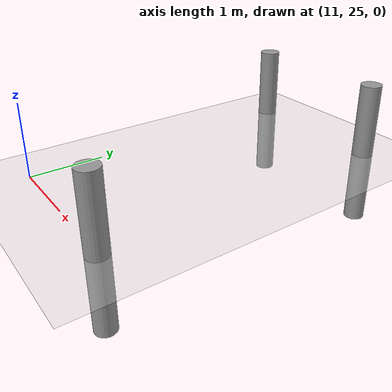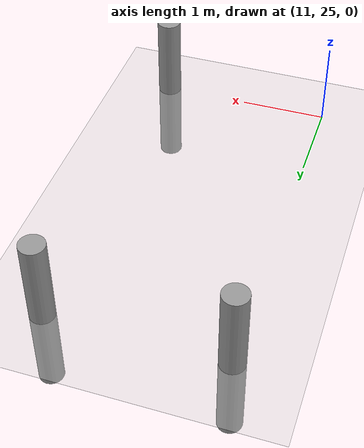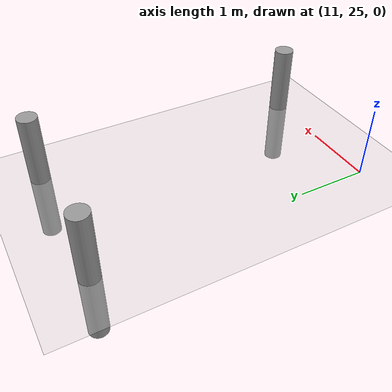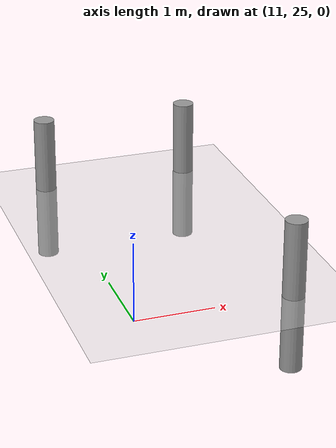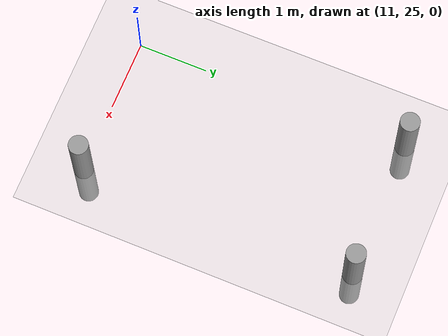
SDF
<sdf version="1.6">
 <world name="default">
  <model name="ground_plane">
   <static>1</static>
   <link name="link">
    <collision name="collision">
     <geometry><plane><normal>0 0 1</normal><size>100 100</size></plane></geometry>
     <surface><friction><ode><mu>100</mu><mu2>50</mu2></ode></friction></surface>
    </collision>
    <visual name="visual">
     <cast_shadows>0</cast_shadows>
     <geometry><plane><normal>0 0 1</normal><size>100 100</size></plane></geometry>
     <material>
      <script><uri>file://media/materials/scripts/gazebo.material</uri><name>Gazebo/Grey</name></script>
     </material>
    </visual>
   </link>
  </model>
  <model name="my_cylinder014_clone_46_0">
   <pose>13 29 0 0 -0 0</pose>
   <link name="my_cylinder014::link">
    <inertial>
     <mass>1</mass>
     <inertia><ixx>0.145833</ixx><ixy>0</ixy><ixz>0</ixz><iyy>0.145833</iyy><iyz>0</iyz><izz>0.125</izz></inertia>
    </inertial>
    <visual name="visual">
     <geometry><cylinder><radius>0.14</radius><length>2</length></cylinder></geometry>
     <material>
      <script><name>Gazebo/Grey</name><uri>file://media/materials/scripts/gazebo.material</uri></script>
      <ambient>0.3 0.3 0.3 1</ambient>
      <diffuse>0.7 0.7 0.7 1</diffuse>
      <specular>1 0.01 0.01 1</specular>
      <emissive>0 0 0 1</emissive>
      <shader type="vertex"><normal_map>__default__</normal_map></shader>
     </material>
    </visual>
    <collision name="collision">
     <geometry><cylinder><radius>0.14</radius><length>2</length></cylinder></geometry>
     <surface>
      <friction>
       <ode><mu>1</mu><mu2>1</mu2><fdir1>0 0 0</fdir1><slip1>0</slip1><slip2>0</slip2></ode>
       <torsional>
        <coefficient>1</coefficient>
        <patch_radius>0</patch_radius>
        <surface_radius>0</surface_radius>
        <use_patch_radius>1</use_patch_radius>
        <ode><slip>0</slip></ode>
       </torsional>
      </friction>
      <bounce><restitution_coefficient>0</restitution_coefficient><threshold>1e+06</threshold></bounce>
      <contact>
       <collide_without_contact>0</collide_without_contact>
       <collide_without_contact_bitmask>1</collide_without_contact_bitmask>
       <collide_bitmask>1</collide_bitmask>
       <ode>
        <soft_cfm>0</soft_cfm>
        <soft_erp>0.2</soft_erp>
        <kp>1e+13</kp>
        <kd>1</kd>
        <max_vel>0.01</max_vel>
        <min_depth>0</min_depth>
       </ode>
       <bullet>
        <split_impulse>1</split_impulse>
        <split_impulse_penetration_threshold>-0.01</split_impulse_penetration_threshold>
        <soft_cfm>0</soft_cfm>
        <soft_erp>0.2</soft_erp>
        <kp>1e+13</kp>
        <kd>1</kd>
       </bullet>
      </contact>
     </surface>
    </collision>
   </link>
   <static>1</static>
  </model>
  <model name="my_cylinder014_clone_30_1">
   <pose>13 25 0 0 -0 0</pose>
   <link name="my_cylinder014::link">
    <inertial>
     <mass>1</mass>
     <inertia><ixx>0.145833</ixx><ixy>0</ixy><ixz>0</ixz><iyy>0.145833</iyy><iyz>0</iyz><izz>0.125</izz></inertia>
    </inertial>
    <visual name="visual">
     <geometry><cylinder><radius>0.14</radius><length>2</length></cylinder></geometry>
     <material>
      <script><name>Gazebo/Grey</name><uri>file://media/materials/scripts/gazebo.material</uri></script>
      <ambient>0.3 0.3 0.3 1</ambient>
      <diffuse>0.7 0.7 0.7 1</diffuse>
      <specular>1 0.01 0.01 1</specular>
      <emissive>0 0 0 1</emissive>
      <shader type="vertex"><normal_map>__default__</normal_map></shader>
     </material>
    </visual>
    <collision name="collision">
     <geometry><cylinder><radius>0.14</radius><length>2</length></cylinder></geometry>
     <surface>
      <friction>
       <ode><mu>1</mu><mu2>1</mu2><fdir1>0 0 0</fdir1><slip1>0</slip1><slip2>0</slip2></ode>
       <torsional>
        <coefficient>1</coefficient>
        <patch_radius>0</patch_radius>
        <surface_radius>0</surface_radius>
        <use_patch_radius>1</use_patch_radius>
        <ode><slip>0</slip></ode>
       </torsional>
      </friction>
      <bounce><restitution_coefficient>0</restitution_coefficient><threshold>1e+06</threshold></bounce>
      <contact>
       <collide_without_contact>0</collide_without_contact>
       <collide_without_contact_bitmask>1</collide_without_contact_bitmask>
       <collide_bitmask>1</collide_bitmask>
       <ode>
        <soft_cfm>0</soft_cfm>
        <soft_erp>0.2</soft_erp>
        <kp>1e+13</kp>
        <kd>1</kd>
        <max_vel>0.01</max_vel>
        <min_depth>0</min_depth>
       </ode>
       <bullet>
        <split_impulse>1</split_impulse>
        <split_impulse_penetration_threshold>-0.01</split_impulse_penetration_threshold>
        <soft_cfm>0</soft_cfm>
        <soft_erp>0.2</soft_erp>
        <kp>1e+13</kp>
        <kd>1</kd>
       </bullet>
      </contact>
     </surface>
    </collision>
   </link>
   <static>1</static>
  </model>
  <model name="my_cylinder014_clone_45_1">
   <pose>11 29 0 0 -0 0</pose>
   <link name="my_cylinder014::link">
    <inertial>
     <mass>1</mass>
     <inertia><ixx>0.145833</ixx><ixy>0</ixy><ixz>0</ixz><iyy>0.145833</iyy><iyz>0</iyz><izz>0.125</izz></inertia>
    </inertial>
    <visual name="visual">
     <geometry><cylinder><radius>0.14</radius><length>2</length></cylinder></geometry>
     <material>
      <script><name>Gazebo/Grey</name><uri>file://media/materials/scripts/gazebo.material</uri></script>
      <ambient>0.3 0.3 0.3 1</ambient>
      <diffuse>0.7 0.7 0.7 1</diffuse>
      <specular>1 0.01 0.01 1</specular>
      <emissive>0 0 0 1</emissive>
      <shader type="vertex"><normal_map>__default__</normal_map></shader>
     </material>
    </visual>
    <collision name="collision">
     <geometry><cylinder><radius>0.14</radius><length>2</length></cylinder></geometry>
     <surface>
      <friction>
       <ode><mu>1</mu><mu2>1</mu2><fdir1>0 0 0</fdir1><slip1>0</slip1><slip2>0</slip2></ode>
       <torsional>
        <coefficient>1</coefficient>
        <patch_radius>0</patch_radius>
        <surface_radius>0</surface_radius>
        <use_patch_radius>1</use_patch_radius>
        <ode><slip>0</slip></ode>
       </torsional>
      </friction>
      <bounce><restitution_coefficient>0</restitution_coefficient><threshold>1e+06</threshold></bounce>
      <contact>
       <collide_without_contact>0</collide_without_contact>
       <collide_without_contact_bitmask>1</collide_without_contact_bitmask>
       <collide_bitmask>1</collide_bitmask>
       <ode>
        <soft_cfm>0</soft_cfm>
        <soft_erp>0.2</soft_erp>
        <kp>1e+13</kp>
        <kd>1</kd>
        <max_vel>0.01</max_vel>
        <min_depth>0</min_depth>
       </ode>
       <bullet>
        <split_impulse>1</split_impulse>
        <split_impulse_penetration_threshold>-0.01</split_impulse_penetration_threshold>
        <soft_cfm>0</soft_cfm>
        <soft_erp>0.2</soft_erp>
        <kp>1e+13</kp>
        <kd>1</kd>
       </bullet>
      </contact>
     </surface>
    </collision>
   </link>
   <static>1</static>
  </model>
 </world>
</sdf>
